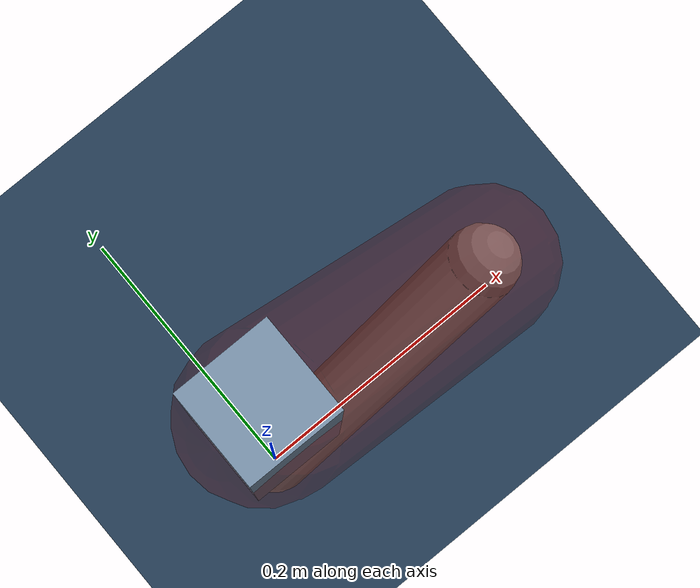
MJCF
<mujoco model="Hopper2D">
	<compiler inertiafromgeom="true" angle="radian" />
	<option timestep="0.001" integrator="implicit" cone="elliptic" solver="Newton" tolerance="1e-10" />

	<default>
		<geom contype="1" conaffinity="1" condim="3" friction="2 0.005 0.0001" solref="0.005 1" />
		<joint limited="true" damping="0.1" />
	</default>

	<asset>
		<texture name="skybox" type="skybox" builtin="gradient" rgb1=".4 .6 .8" rgb2="0 0 0" width="800" height="800" />
		<texture name="grid" type="2d" builtin="checker" rgb1=".1 .2 .3" rgb2=".2 .3 .4" width="300" height="300" mark="edge" markrgb=".2 .3 .4" />
		<material name="ground" texture="grid" texrepeat="1 1" texuniform="true" reflectance="0.1" />
		<material name="leg" rgba="0.5 0.6 0.7 1" />
	</asset>

	<worldbody>

		<geom name="floor" type="plane" size="5 5 0.25" material="ground" />

		<light directional="false" diffuse="0.8 0.8 0.8" specular="0.3 0.3 0.3" pos="0 0 2" dir="0 0 -1" />
		<light mode="targetbodycom" target="base" directional="false" diffuse="0.8 0.8 0.8" specular="0.3 0.3 0.3" pos="0 0 2" dir="0 0 -1" />

		<camera name="fixed" pos="0 -2 1" xyaxes="1 0 0 0 0 1" />
		<camera name="tracking" mode="trackcom" pos="0 -3 1" />

		<body name="root" pos="0 0 0.4574844349303711">
			<joint name="slide_x" type="slide" axis="1 0 0" range="-100 100" />
			<joint name="slide_z" type="slide" axis="0 0 1" range="0 10" />

			<body name="base" pos="0 0 0">
				<geom name="torso" type="box" size="0.03 0.03 0.1" mass="1.873" material="leg" />

				<body name="link1" pos="0 0 0" euler="0 0.8613589244267307 0">
					<joint type="hinge" axis="0 -1 0" pos="0 0 0" name="hinge1" limited="true" range="-3.14 3.14" stiffness="0" damping="0.1" />
					<geom name="thigh" type="capsule" fromto="0 0 0 0.2647771479241671 0 0" size="0.05" rgba="0.5 0 0 0.3" mass="0.8949205846028344" />

					<body name="link2" pos="0.2647771479241671 0 0" euler="0 1.3012544906332517 0">
						<joint type="hinge" axis="0 -1 0" pos="0 0 0" name="hinge2" limited="true" range="-3.14 3.14" stiffness="0" damping="0.1" />
						<geom name="shank" type="capsule" fromto="0 0 0 0.30917183723779185 0 0" size="0.025" mass="0.4908546535140127" />

					</body>
				</body>
			</body>
		</body>
	</worldbody>

	<actuator>
		<motor name="torque1" joint="hinge1" ctrlrange="-53.26361807813049 53.26361807813049" ctrllimited="true" gear="1" />
		<motor name="torque2" joint="hinge2" ctrlrange="-55.46773304717322 55.46773304717322" ctrllimited="true" gear="1" />
	</actuator>
</mujoco>
